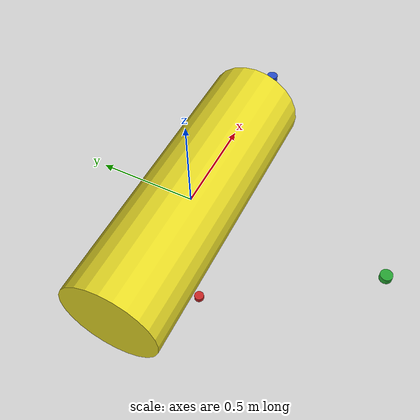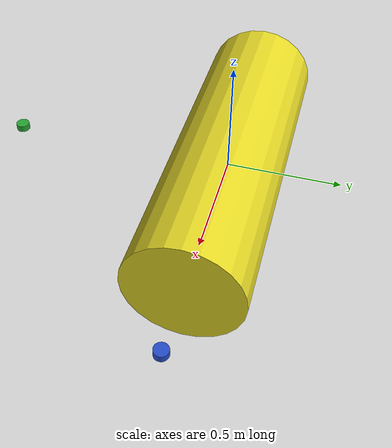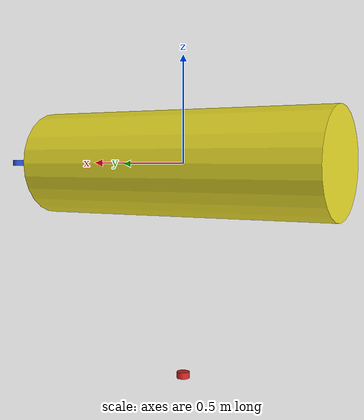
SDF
<?xml version="1.0"?>
<sdf version="1.5">
  <model name="ucf_submarine_simple">
    <pose>0 0 0 3.14 0 0</pose>
    <link name="body">
        <gravity> 0 </gravity>
        <pose>0 0 0 0 0 0</pose>
        <inertial>
          <mass>31.75</mass>
          <inertia>
            <ixx>0.992</ixx>
            <ixy>0</ixy>
            <ixz>0</ixz>
            <iyy>6.449</iyy>
            <iyz>0</iyz>
            <izz>6.449</izz>
          </inertia>
        </inertial>
        <collision name="collision">
            <pose>0 0 0 0 1.57 0</pose>
            <geometry>
                <cylinder>
                    <radius>0.25</radius>
                    <length>1.5</length>
                </cylinder>
            </geometry>
        </collision>
        <visual name="visual">
            <pose>0 0 0 0 1.57 0</pose>
            <geometry>
                <cylinder>
                    <radius>0.25</radius>
                    <length>1.5</length>
                </cylinder>
            </geometry>
            <material>
              <script>
                <uri>file://media/materials/scripts/gazebo.material</uri>
                <name>Gazebo/Yellow</name>
              </script>
            </material>
        </visual>
        <visual name="+Z">
            <pose>0 0 1 0 0 0</pose>
            <geometry>
                <cylinder>
                    <radius>0.03</radius>
                    <length>0.03</length>
                </cylinder>
            </geometry>
            <material>
              <script>
                <uri>file://media/materials/scripts/gazebo.material</uri>
                <name>Gazebo/Red</name>
              </script>
            </material>
        </visual>
        <visual name="+Y">
            <pose>0 1 0 0 0 0</pose>
            <geometry>
                <cylinder>
                    <radius>0.03</radius>
                    <length>0.03</length>
                </cylinder>
            </geometry>
            <material>
              <script>
                <uri>file://media/materials/scripts/gazebo.material</uri>
                <name>Gazebo/Green</name>
              </script>
            </material>
        </visual>
        <visual name="+X">
            <pose>1 0 0 0 0 0</pose>
            <geometry>
                <cylinder>
                    <radius>0.03</radius>
                    <length>0.03</length>
                </cylinder>
            </geometry>
            <material>
              <script>
                <uri>file://media/materials/scripts/gazebo.material</uri>
                <name>Gazebo/Blue</name>
              </script>
            </material>
        </visual>
    </link>
  </model>
</sdf>
